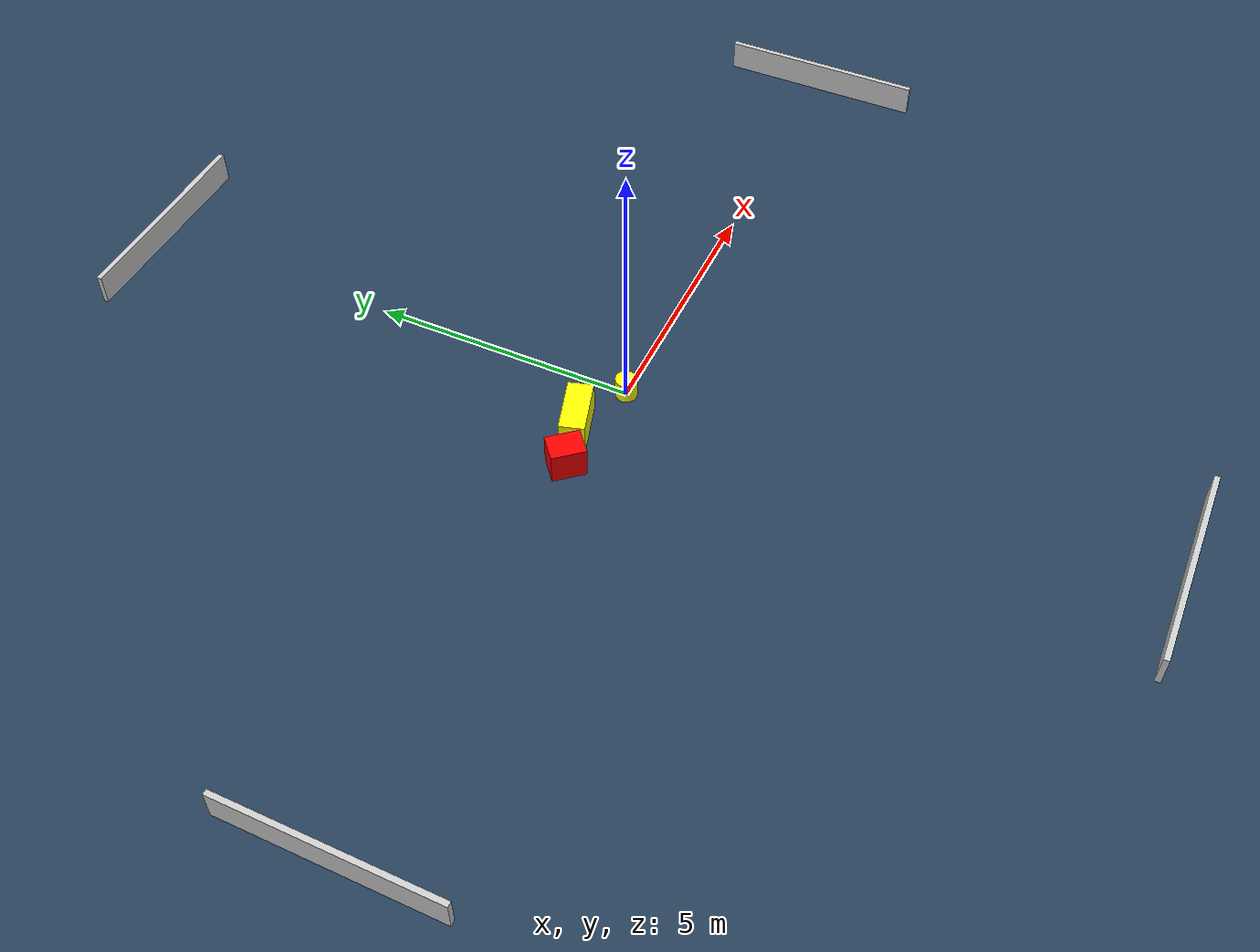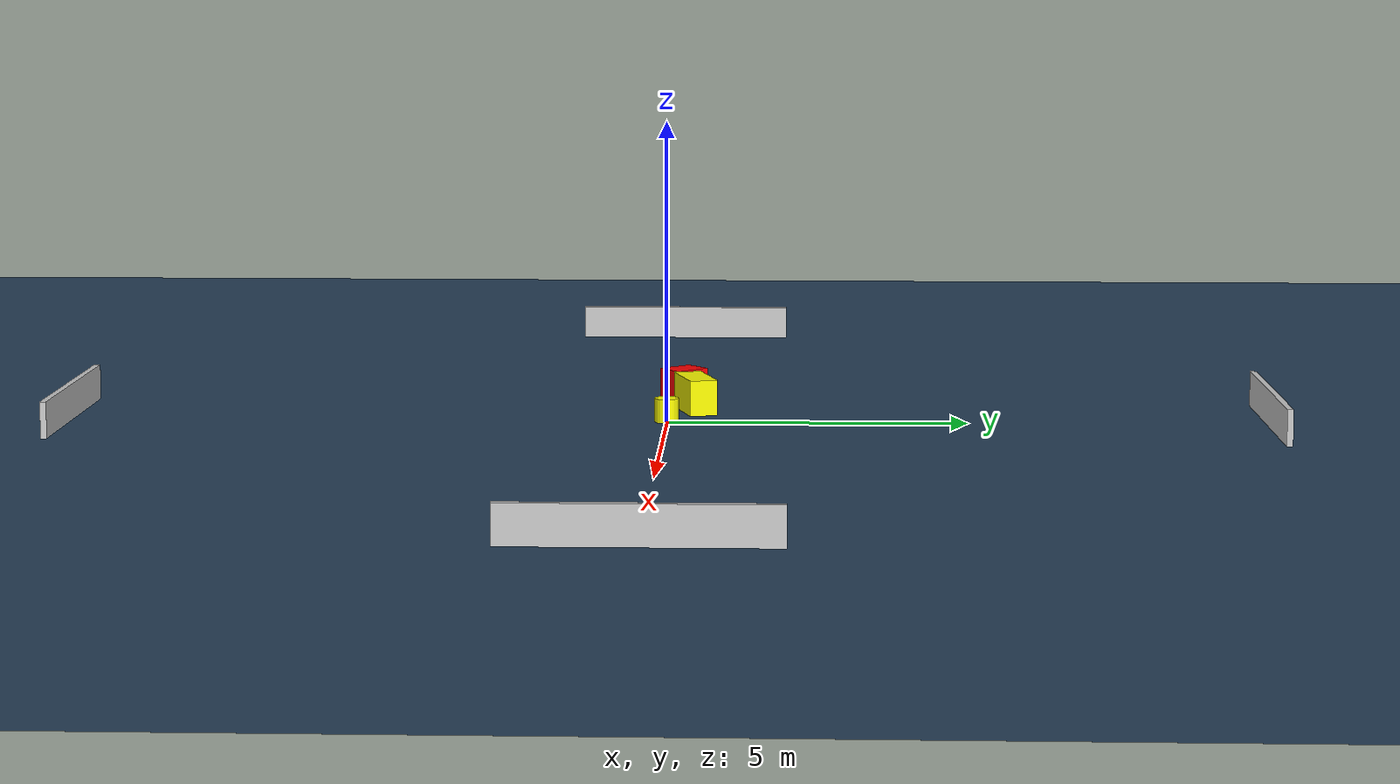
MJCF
<?xml version="1.0" ?>
<mujoco model="generated_environment">
  <option timestep="0.01" integrator="RK4" cone="elliptic"/>
  <default>
    <geom density="1"/>
  </default>
  <asset>
    <texture builtin="gradient" height="3072" name="skybox" rgb1="0.3 0.5 0.7" rgb2="0 0 0" type="skybox" width="512"/>
    <texture builtin="checker" height="300" name="groundplane" rgb1="0.2 0.3 0.4" rgb2="0.1 0.2 0.3" type="2d" width="300"/>
    <material name="groundplane" reflectance="0.2" texrepeat="5 5" texture="groundplane"/>
  </asset>
  <worldbody>
    <light dir="0 0 -1" directional="true" pos="0 0 1.5"/>
    <geom condim="3" friction="0.5 0.005 0.001" material="groundplane" name="floor" pos="0 0 0" size="0 0 0.05" type="plane"/>
    <body name="walls">
      <geom name="wall_1" condim="4" pos="-10.0 0.0 0.3" rgba="0.800000011920929 0.800000011920929 0.800000011920929 1.0" size="0.05 2.0 0.3" type="box"/>
      <geom name="wall_2" condim="4" pos="10.0 0.0 0.3" rgba="0.800000011920929 0.800000011920929 0.800000011920929 1.0" size="0.05 2.0 0.3" type="box"/>
      <geom name="wall_3" condim="4" pos="0.0 -10.0 0.3" rgba="0.800000011920929 0.800000011920929 0.800000011920929 1.0" size="2.0 0.05 0.3" type="box"/>
      <geom name="wall_4" condim="4" pos="0.0 10.0 0.3" rgba="0.800000011920929 0.800000011920929 0.800000011920929 1.0" size="2.0 0.05 0.3" type="box"/>
    </body>
    <body name="robot">
      <joint name="joint_x" type="slide" pos="0 0 0" axis="1 0 0"/>
      <joint name="joint_y" type="slide" pos="0 0 0" axis="0 1 0"/>
      <geom name="robot" type="cylinder" pos="0.0 0.0 0.2" size="0.2 0.2 0.0" mass="5.0" friction="1.0 0.005 0.0001" condim="4" rgba="1.0 1.0 0.0 1.0"/>
    </body>
    <body name="obstacle_1_movable">
      <geom name="obstacle_1_movable" condim="4" pos="-1.1021766658165573 0.4515760251655197 0.3" euler="0 0 286.89238808978536" friction="0.0 0.005 0.001" rgba="1.0 1.0 0.0 1.0" size="0.2345091741497194 0.5270550806751753 0.3" type="box" mass="0.1"/>
      <joint type="free"/>
    </body>
    <body name="obstacle_2_static">
      <geom name="obstacle_2_static" condim="4" pos="-1.981505542197304 0.22285836415800683 0.3" euler="0 0 220.07756124826207" friction="0.0 0.005 0.001" rgba="1.0 0.0 0.0 1.0" size="0.2513262553994692 0.3177408926431017 0.3" type="box"/>
    </body>
  </worldbody>
  <actuator>
    <motor name="actuator_x" joint="joint_x" gear="1" ctrlrange="-1 1"/>
    <motor name="actuator_y" joint="joint_y" gear="1" ctrlrange="-1 1"/>
  </actuator>
</mujoco>
